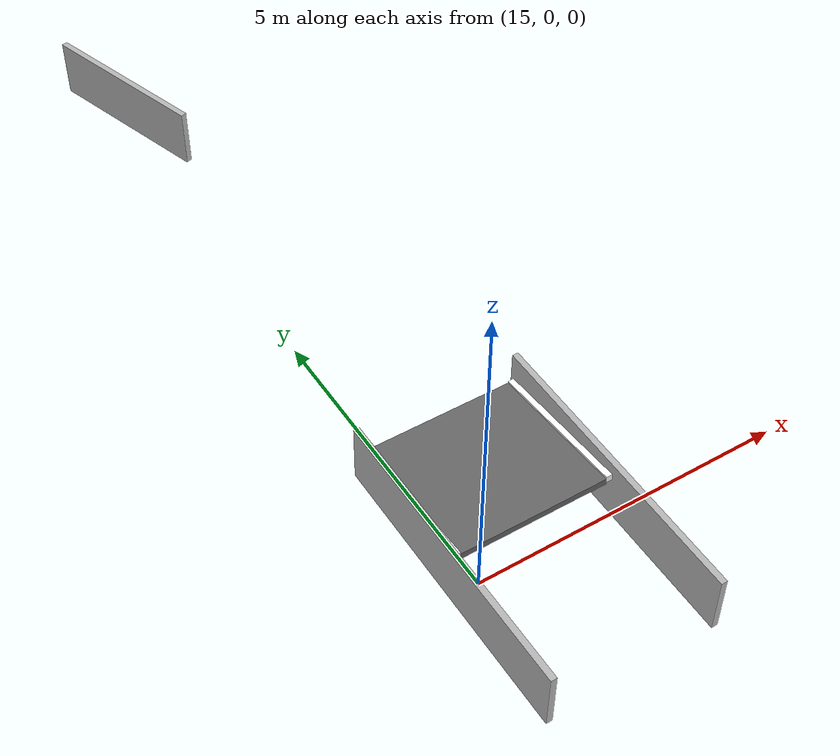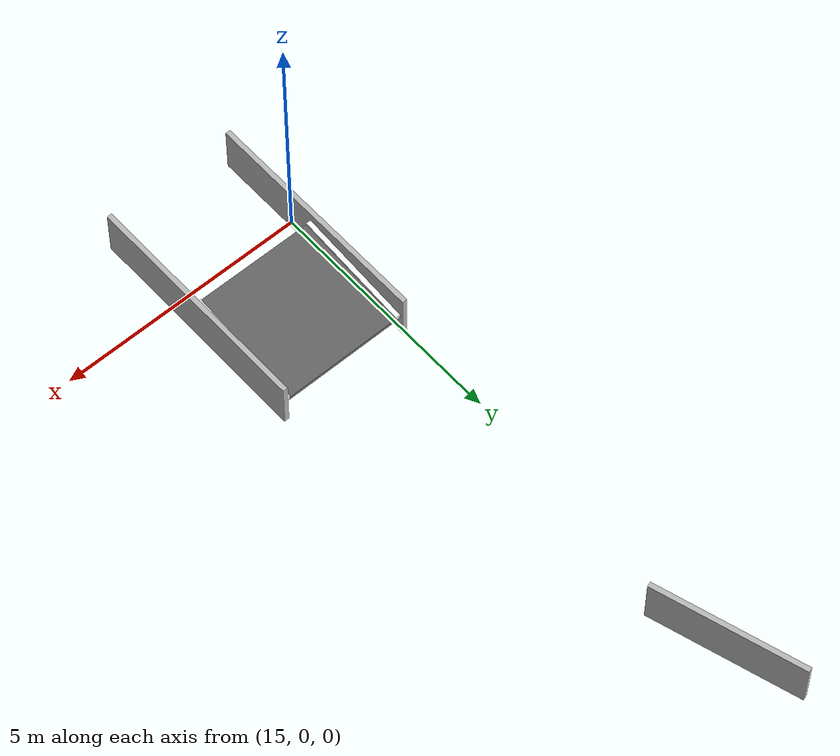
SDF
<sdf version="1.7">
 <world name="default">
  <model name="barricade_1">
   <static>1</static>
   <pose>15.2038 11.26 0.5 0 0 1.8687</pose>
   <link name="link">
    <collision name="collision"><geometry><box><size>3 0.1 1</size></box></geometry></collision>
    <visual name="visual"><geometry><box><size>3 0.1 1</size></box></geometry></visual>
   </link>
  </model>
  <model name="ramp_down">
   <static>1</static>
   <pose>16.1541 1.5493 0.1 0.1122 0 3.14</pose>
   <link name="link">
    <collision name="collision">
     <geometry><box><size>2.41 2.41 0.1</size></box></geometry>
     <surface>
      <friction><ode><mu>100</mu><mu2>50</mu2><slip1>0.0</slip1><slip2>0.0</slip2></ode></friction>
     </surface>
     <surface>
      <friction><ode><mu>100</mu><mu2>50</mu2><slip1>0.0</slip1><slip2>0.0</slip2></ode></friction>
     </surface>
    </collision>
    <visual name="visual">
     <geometry><box><size>2.41 2.41 0.1</size></box></geometry>
     <material><ambient>0.4 0.7 0.6 1</ambient><diffuse>0.4 0.4 0.4 1</diffuse></material>
    </visual>
   </link>
  </model>
  <model name="ramp_wall_left">
   <static>1</static>
   <pose>17.5091 0.4293 0 0 0 1.5708</pose>
   <link name="link">
    <collision name="collision"><geometry><box><size>4.78 0.1 1</size></box></geometry></collision>
    <visual name="visual"><geometry><box><size>4.78 0.1 1</size></box></geometry></visual>
   </link>
  </model>
  <model name="ramp_wall_right">
   <static>1</static>
   <pose>14.7941 0.4193 0 0 0 1.5708</pose>
   <link name="link">
    <collision name="collision"><geometry><box><size>4.78 0.1 1</size></box></geometry></collision>
    <visual name="visual"><geometry><box><size>4.78 0.1 1</size></box></geometry></visual>
   </link>
  </model>
  <model name="ramp_down_lane_line_left">
   <static>1</static>
   <pose>17.4091 1.5493 0.135 0.1122 0 3.14</pose>
   <link name="link">
    <inertial><mass>0.1</mass><inertia><ixx>0.0001</ixx><iyy>0.0001</iyy><izz>0.0001</izz></inertia></inertial>
    <collision name="collision">
     <geometry><box><size>0.1 2.41 0.1</size></box></geometry>
     <surface><friction><ode><mu>0.1</mu><mu2>0.1</mu2></ode></friction></surface>
    </collision>
    <visual name="visual">
     <geometry><box><size>0.1 2.41 0.1</size></box></geometry>
     <material><ambient>1 1 1 1</ambient><diffuse>1 1 1 1</diffuse></material>
    </visual>
   </link>
  </model>
  <model name="ramp_down_lane_line_right">
   <static>1</static>
   <pose>14.8991 1.5493 0.135 0.1122 0 3.14</pose>
   <link name="link">
    <inertial><mass>0.1</mass><inertia><ixx>0.0001</ixx><iyy>0.0001</iyy><izz>0.0001</izz></inertia></inertial>
    <collision name="collision">
     <geometry><box><size>0.1 2.41 0.1</size></box></geometry>
     <surface><friction><ode><mu>0.1</mu><mu2>0.1</mu2></ode></friction></surface>
    </collision>
    <visual name="visual">
     <geometry><box><size>0.1 2.41 0.1</size></box></geometry>
     <material><ambient>1 1 1 1</ambient><diffuse>1 1 1 1</diffuse></material>
    </visual>
   </link>
  </model>
 </world>
</sdf>
